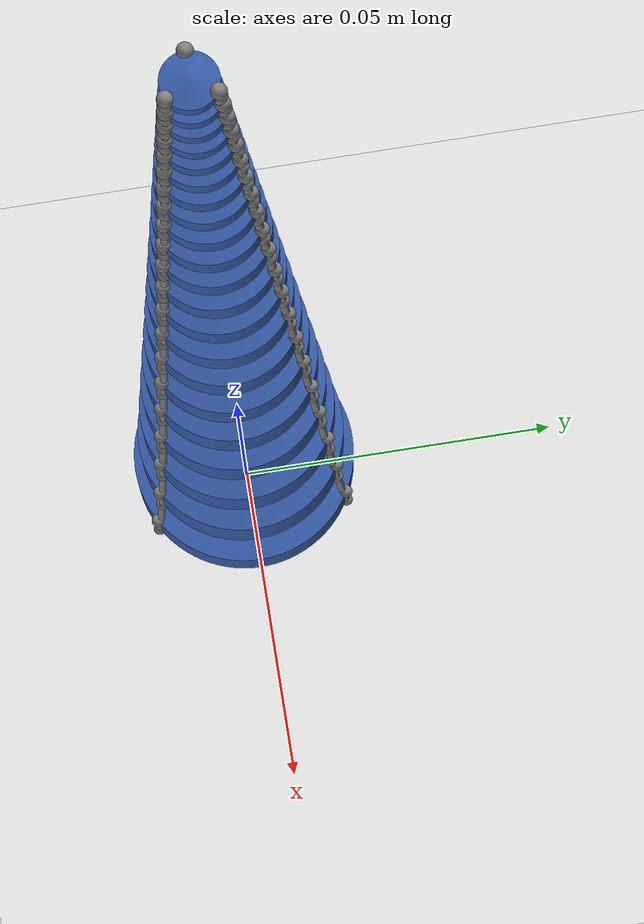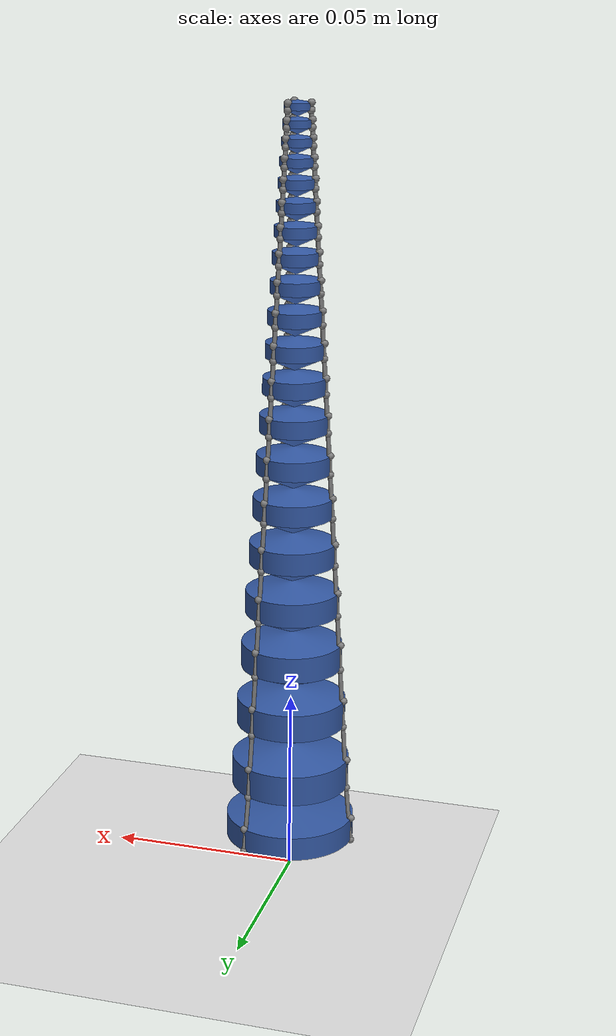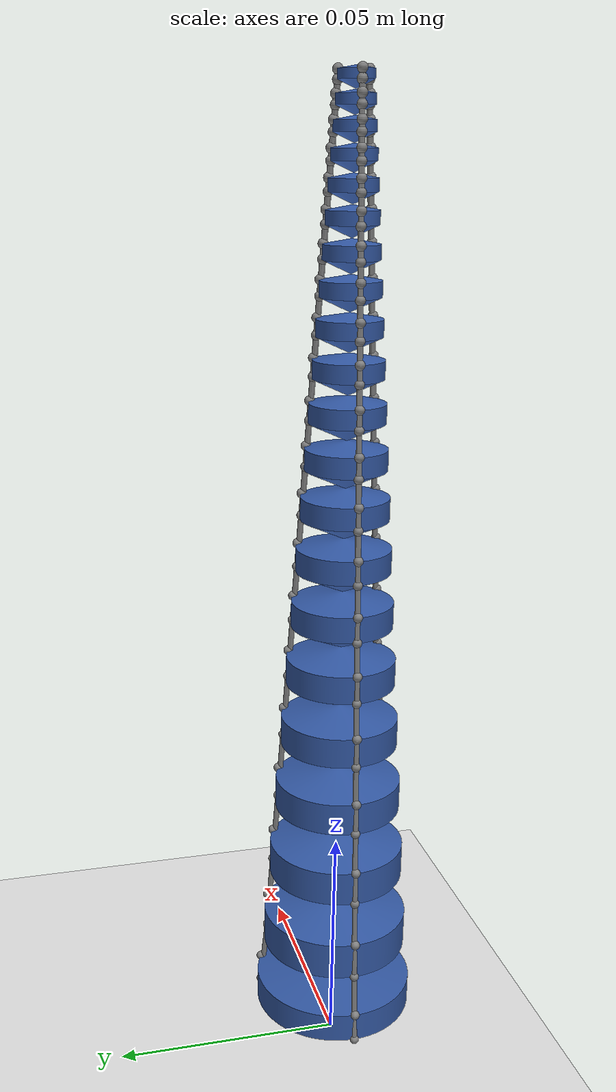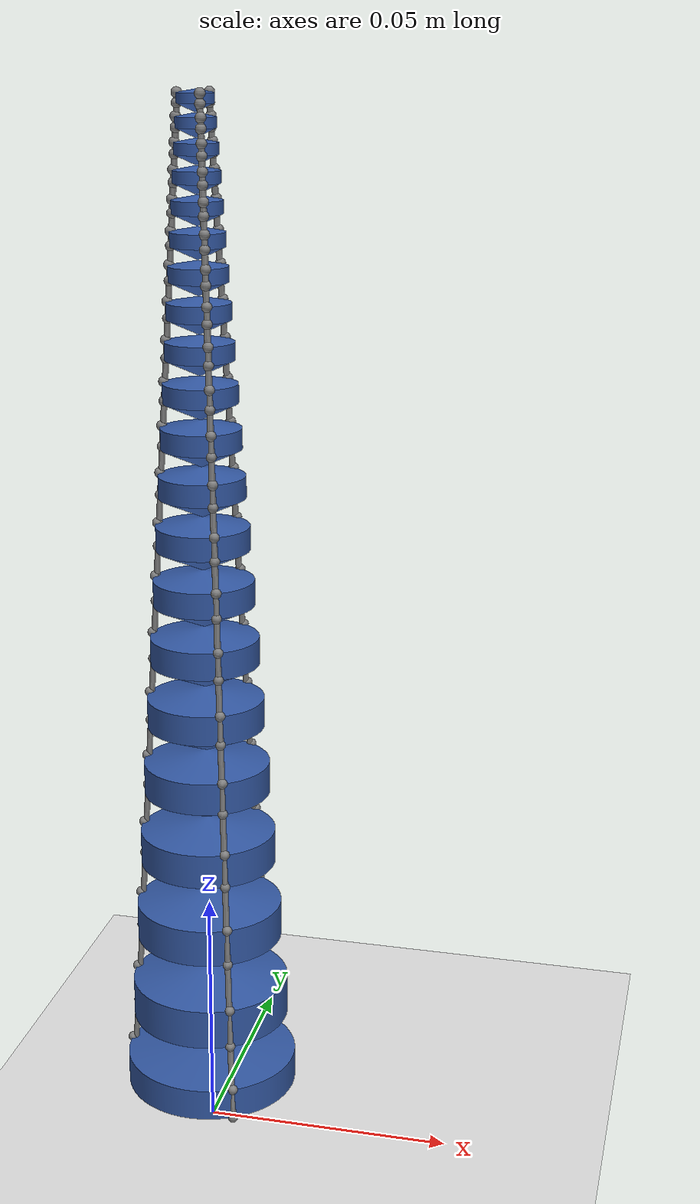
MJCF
<mujoco model="SpiRob">
  <compiler angle="radian" inertiafromgeom="true" autolimits="true"/>
  <option timestep="0.002" gravity="0.0 0.0 -9.81" integrator="implicit"/>
  <visual>
    <quality shadowsize="4096"/>
    <map znear="0.01" zfar="20"/>
    <scale connect="0"/>
  </visual>

  <!-- ===== DEFAULTS: edit these to tune global behavior ===== -->
  <default>
    <geom density="1200.0" margin="0.001"
          rgba="0.2 0.35 0.65 1.0"
          friction="0.6 0.01 0.001"/>
    <site size="0.001"/>
    <joint damping="0.01" stiffness="0.05" limited="false"/>
    <motor ctrllimited="true" ctrlrange="-5.0 0.0" gear="1.0"/>
  </default>

  <asset>
    <mesh name="link_001" file="meshes\link_001.stl"/>

    <mesh name="link_002" file="meshes\link_002.stl"/>

    <mesh name="link_003" file="meshes\link_003.stl"/>

    <mesh name="link_004" file="meshes\link_004.stl"/>

    <mesh name="link_005" file="meshes\link_005.stl"/>

    <mesh name="link_006" file="meshes\link_006.stl"/>

    <mesh name="link_007" file="meshes\link_007.stl"/>

    <mesh name="link_008" file="meshes\link_008.stl"/>

    <mesh name="link_009" file="meshes\link_009.stl"/>

    <mesh name="link_010" file="meshes\link_010.stl"/>

    <mesh name="link_011" file="meshes\link_011.stl"/>

    <mesh name="link_012" file="meshes\link_012.stl"/>

    <mesh name="link_013" file="meshes\link_013.stl"/>

    <mesh name="link_014" file="meshes\link_014.stl"/>

    <mesh name="link_015" file="meshes\link_015.stl"/>

    <mesh name="link_016" file="meshes\link_016.stl"/>

    <mesh name="link_017" file="meshes\link_017.stl"/>

    <mesh name="link_018" file="meshes\link_018.stl"/>

    <mesh name="link_019" file="meshes\link_019.stl"/>

    <mesh name="link_020" file="meshes\link_020.stl"/>

    <mesh name="link_021" file="meshes\link_021.stl"/>
  </asset>

  <worldbody>
    <light name="light1" diffuse="1 1 1" active="true" pos="0 -0.5 0.01" dir="0 1 0"/>
    <light name="light2" diffuse="1 1 1" active="true" pos="-0.01 -0.5 0.5" dir="0 0 -1"/>
    <light name="light3" diffuse="1 1 1" active="true" pos="0 -0.1 1.5" dir="0 0 -1"/>
    <geom type="plane" size="2 2 0.05" rgba="0.9 0.9 0.9 1"/>
    <body name="link_001" pos="9.201534098006623e-17 0.0 0.003204676108156501" quat="0.9999999999999989 0.0 -2.0265051502934331e-16 -0.0">
      <joint name="j_001" type="ball"/>
      <geom name="gmesh_001" type="mesh" mesh="link_001" group="1"/>
      <site name="c0_001_s1" pos="-0.017466993738933023 0.0 0.0064417392977900514"/> <site name="c0_001_s2" pos="-0.01746699373893302 0.0 0.012934492045517589"/> <site name="c1_001_s1" pos="0.008733496869466374 -0.015126860305659656 0.006441739297790041"/> <site name="c1_001_s2" pos="0.008733496869466376 -0.015126860305659656 0.012934492045517578"/> <site name="c2_001_s1" pos="0.008733496869466385 0.015126860305659651 0.006441739297790041"/> <site name="c2_001_s2" pos="0.008733496869466386 0.015126860305659651 0.012934492045517578"/>

    <body name="link_002" pos="0.0 0.0 0.014679218087922385" quat="0.9999999999999989 0.0 2.267115779592851e-16 0.0">
      <joint name="j_002" type="ball"/>
      <geom name="gmesh_002" type="mesh" mesh="link_002" group="1"/>
      <site name="c0_002_s1" pos="-0.015931188921888266 0.0 0.007371374279879938"/> <site name="c0_002_s2" pos="-0.01593118892188827 0.0 0.015561736087811445"/> <site name="c1_002_s1" pos="0.007965594460944 -0.013796814318844388 0.007371374279879939"/> <site name="c1_002_s2" pos="0.007965594460944001 -0.01379681431884439 0.015561736087811445"/> <site name="c2_002_s1" pos="0.00796559446094401 0.013796814318844384 0.007371374279879939"/> <site name="c2_002_s2" pos="0.007965594460944012 0.013796814318844386 0.015561736087811445"/>

    <body name="link_003" pos="0.0 0.0 0.018517277935725662" quat="0.9999999999999989 0.0 2.4888340552575934e-17 0.0">
      <joint name="j_003" type="ball"/>
      <geom name="gmesh_003" type="mesh" mesh="link_003" group="1"/>
      <site name="c0_003_s1" pos="-0.0147051779522689 0.0 0.006804097991047168"/> <site name="c0_003_s2" pos="-0.014705177952268904 0.0 0.01436415697155574"/> <site name="c1_003_s1" pos="0.007352588976134316 -0.012735057673835625 0.006804097991047171"/> <site name="c1_003_s2" pos="0.007352588976134316 -0.012735057673835627 0.014364156971555742"/> <site name="c2_003_s1" pos="0.007352588976134326 0.012735057673835622 0.006804097991047171"/> <site name="c2_003_s2" pos="0.007352588976134326 0.012735057673835624 0.014364156971555742"/>

    <body name="link_004" pos="0.0 0.0 0.017092250212559446" quat="0.9999999999999989 0.0 3.0213085282659427e-17 0.0">
      <joint name="j_004" type="ball"/>
      <geom name="gmesh_004" type="mesh" mesh="link_004" group="1"/>
      <site name="c0_004_s1" pos="-0.013573516682787863 0.0 0.006280477386440079"/> <site name="c0_004_s2" pos="-0.013573516682787858 0.0 0.013258739535179307"/> <site name="c1_004_s1" pos="0.006786758341393795 -0.011755010265986096 0.006280477386440082"/> <site name="c1_004_s2" pos="0.006786758341393791 -0.011755010265986092 0.013258739535179311"/> <site name="c2_004_s1" pos="0.006786758341393803 0.011755010265986094 0.006280477386440082"/> <site name="c2_004_s2" pos="0.0067867583413938 0.011755010265986089 0.013258739535179311"/>

    <body name="link_005" pos="0.0 0.0 0.015776887852673893" quat="0.9999999999999989 0.0 -1.5314412010148087e-16 0.0">
      <joint name="j_005" type="ball"/>
      <geom name="gmesh_005" type="mesh" mesh="link_005" group="1"/>
      <site name="c0_005_s1" pos="-0.012528944276359023 0.0 0.005797152870738483"/> <site name="c0_005_s2" pos="-0.012528944276359026 0.0 0.0122383913243109"/> <site name="c1_005_s1" pos="0.0062644721381793726 -0.010850384025926476 0.00579715287073848"/> <site name="c1_005_s2" pos="0.006264472138179376 -0.010850384025926479 0.012238391324310897"/> <site name="c2_005_s1" pos="0.00626447213817938 0.010850384025926472 0.00579715287073848"/> <site name="c2_005_s2" pos="0.006264472138179384 0.010850384025926477 0.012238391324310897"/>

    <body name="link_006" pos="0.0 0.0 0.01456275137681698" quat="0.9999999999999989 0.0 -2.9948116073343956e-15 0.0">
      <joint name="j_006" type="ball"/>
      <geom name="gmesh_006" type="mesh" mesh="link_006" group="1"/>
      <site name="c0_006_s1" pos="-0.011564758665612702 0.0 0.005351023391831857"/> <site name="c0_006_s2" pos="-0.0115647586656127 0.0 0.011296565696125404"/> <site name="c1_006_s1" pos="0.005782379332806264 -0.010015374793056779 0.00535102339183175"/> <site name="c1_006_s2" pos="0.005782379332806318 -0.010015374793056808 0.011296565696125298"/> <site name="c2_006_s1" pos="0.005782379332806272 0.010015374793056775 0.00535102339183175"/> <site name="c2_006_s2" pos="0.005782379332806326 0.010015374793056806 0.011296565696125298"/>

    <body name="link_007" pos="0.0 0.0 0.013442050779808395" quat="0.9999999999999989 0.0 2.9773580553475247e-15 0.0">
      <joint name="j_007" type="ball"/>
      <geom name="gmesh_007" type="mesh" mesh="link_007" group="1"/>
      <site name="c0_007_s1" pos="-0.010674773551848754 0.0 0.0049392265441990674"/> <site name="c0_007_s2" pos="-0.010674773551848756 0.0 0.01042721981551459"/> <site name="c1_007_s1" pos="0.005337386775924367 -0.00924462507554726 0.004939226544199065"/> <site name="c1_007_s2" pos="0.0053373867759243685 -0.009244625075547262 0.010427219815514586"/> <site name="c2_007_s1" pos="0.005337386775924374 0.009244625075547257 0.004939226544199065"/> <site name="c2_007_s2" pos="0.0053373867759243755 0.009244625075547259 0.010427219815514586"/>

    <body name="link_008" pos="0.0 0.0 0.012407595549189424" quat="0.9999999999999989 0.0 7.651755397152339e-17 0.0">
      <joint name="j_008" type="ball"/>
      <geom name="gmesh_008" type="mesh" mesh="link_008" group="1"/>
      <site name="c0_008_s1" pos="-0.00985327871320629 0.0 0.004559120203466202"/> <site name="c0_008_s2" pos="-0.009853278713206287 0.0 0.00962477588373191"/> <site name="c1_008_s1" pos="0.004926639356603136 -0.008533189676205089 0.004559120203466202"/> <site name="c1_008_s2" pos="0.004926639356603135 -0.008533189676205087 0.00962477588373191"/> <site name="c2_008_s1" pos="0.004926639356603143 0.008533189676205087 0.004559120203466202"/> <site name="c2_008_s2" pos="0.004926639356603142 0.008533189676205085 0.00962477588373191"/>

    <body name="link_009" pos="0.0 0.0 0.011452748530270077" quat="0.9999999999999989 0.0 4.804851811769712e-17 0.0">
      <joint name="j_009" type="ball"/>
      <geom name="gmesh_009" type="mesh" mesh="link_009" group="1"/>
      <site name="c0_009_s1" pos="-0.009095003367383822 0.0 0.0042082655743064514"/> <site name="c0_009_s2" pos="-0.00909500336738382 0.0 0.008884085350750331"/> <site name="c1_009_s1" pos="0.004547501683691904 -0.0078765039636594 0.004208265574306452"/> <site name="c1_009_s2" pos="0.004547501683691902 -0.0078765039636594 0.008884085350750331"/> <site name="c2_009_s1" pos="0.00454750168369191 0.007876503963659399 0.004208265574306452"/> <site name="c2_009_s2" pos="0.0045475016836919084 0.007876503963659397 0.008884085350750331"/>

    <body name="link_010" pos="0.0 0.0 0.01057138334156707" quat="0.9999999999999989 0.0 -7.302398845032509e-17 0.0">
      <joint name="j_010" type="ball"/>
      <geom name="gmesh_010" type="mesh" mesh="link_010" group="1"/>
      <site name="c0_010_s1" pos="-0.008395082353841798 0.0 0.003884411542917577"/> <site name="c0_010_s2" pos="-0.0083950823538418 0.0 0.008200395881718309"/> <site name="c1_010_s1" pos="0.00419754117692089 -0.007270354585289455 0.003884411542917576"/> <site name="c1_010_s2" pos="0.004197541176920892 -0.007270354585289456 0.008200395881718309"/> <site name="c2_010_s1" pos="0.004197541176920895 0.007270354585289453 0.003884411542917576"/> <site name="c2_010_s2" pos="0.004197541176920897 0.007270354585289454 0.008200395881718309"/>

    <body name="link_011" pos="0.0 0.0 0.009757845067408122" quat="0.9999999999999989 0.0 -8.819192595672664e-17 0.0">
      <joint name="j_011" type="ball"/>
      <geom name="gmesh_011" type="mesh" mesh="link_011" group="1"/>
      <site name="c0_011_s1" pos="-0.007749024918509591 0.0 0.003585480233679913"/> <site name="c0_011_s2" pos="-0.007749024918509589 0.0 0.007569320865565917"/> <site name="c1_011_s1" pos="0.0038745124592547892 -0.0067108524339879435 0.00358548023367991"/> <site name="c1_011_s2" pos="0.0038745124592547897 -0.006710852433987943 0.007569320865565914"/> <site name="c2_011_s1" pos="0.0038745124592547944 0.006710852433987942 0.00358548023367991"/> <site name="c2_011_s2" pos="0.003874512459254795 0.006710852433987941 0.007569320865565914"/>

    <body name="link_012" pos="0.0 0.0 0.009006913975501296" quat="0.9999999999999989 0.0 1.2967630674290876e-16 0.0">
      <joint name="j_012" type="ball"/>
      <geom name="gmesh_012" type="mesh" mesh="link_012" group="1"/>
      <site name="c0_012_s1" pos="-0.007152685900717032 0.0 0.0033095536773256606"/> <site name="c0_012_s2" pos="-0.007152685900717034 0.0 0.0069868112701267915"/> <site name="c1_012_s1" pos="0.003576342950358512 -0.006194407695311728 0.0033095536773256606"/> <site name="c1_012_s2" pos="0.003576342950358513 -0.006194407695311729 0.0069868112701267915"/> <site name="c2_012_s1" pos="0.003576342950358517 0.0061944076953117265 0.0033095536773256606"/> <site name="c2_012_s2" pos="0.0035763429503585177 0.006194407695311727 0.0069868112701267915"/>

    <body name="link_013" pos="0.0 0.0 0.008313772026678407" quat="0.9999999999999989 0.0 1.3954097849488682e-17 0.0">
      <joint name="j_013" type="ball"/>
      <geom name="gmesh_013" type="mesh" mesh="link_013" group="1"/>
      <site name="c0_013_s1" pos="-0.006602239137483155 0.0 0.003054861505081663"/> <site name="c0_013_s2" pos="-0.006602239137483156 0.0 0.006449129663196246"/> <site name="c1_013_s1" pos="0.003301119568741574 -0.005717706814920272 0.003054861505081663"/> <site name="c1_013_s2" pos="0.0033011195687415746 -0.005717706814920273 0.006449129663196246"/> <site name="c2_013_s1" pos="0.0033011195687415785 0.0057177068149202705 0.003054861505081663"/> <site name="c2_013_s2" pos="0.003301119568741579 0.005717706814920271 0.006449129663196246"/>

    <body name="link_014" pos="0.0 0.0 0.007673971961937587" quat="0.9999999999999989 0.0 1.7667064599478886e-17 0.0">
      <joint name="j_014" type="ball"/>
      <geom name="gmesh_014" type="mesh" mesh="link_014" group="1"/>
      <site name="c0_014_s1" pos="-0.006094152914521888 0.0 0.002819769589829074"/> <site name="c0_014_s2" pos="-0.006094152914521888 0.0 0.005952826232840658"/> <site name="c1_014_s1" pos="0.00304707645726094 -0.005277691238522931 0.0028197695898290742"/> <site name="c1_014_s2" pos="0.0030470764572609397 -0.005277691238522931 0.005952826232840658"/> <site name="c2_014_s1" pos="0.003047076457260944 0.005277691238522929 0.0028197695898290742"/> <site name="c2_014_s2" pos="0.0030470764572609436 0.005277691238522929 0.005952826232840658"/>

    <body name="link_015" pos="0.0 0.0 0.007083408768442323" quat="0.9999999999999989 0.0 -7.038556109038006e-19 0.0">
      <joint name="j_015" type="ball"/>
      <geom name="gmesh_015" type="mesh" mesh="link_015" group="1"/>
      <site name="c0_015_s1" pos="-0.005625167306456169 0.0 0.0026027695614018183"/> <site name="c0_015_s2" pos="-0.005625167306456168 0.0 0.005494716653104692"/> <site name="c1_015_s1" pos="0.0028125836532280797 -0.004871537787928725 0.0026027695614018187"/> <site name="c1_015_s2" pos="0.002812583653228079 -0.0048715377879287244 0.005494716653104692"/> <site name="c2_015_s1" pos="0.0028125836532280836 0.004871537787928724 0.0026027695614018187"/> <site name="c2_015_s2" pos="0.0028125836532280827 0.004871537787928723 0.005494716653104692"/>

    <body name="link_016" pos="0.0 0.0 0.006538293341402462" quat="0.9999999999999989 0.0 -3.040727752437489e-16 0.0">
      <joint name="j_016" type="ball"/>
      <geom name="gmesh_016" type="mesh" mesh="link_016" group="1"/>
      <site name="c0_016_s1" pos="-0.005192273260853322 0.0 0.002402469128752613"/> <site name="c0_016_s2" pos="-0.005192273260853323 0.0 0.005071861653098922"/> <site name="c1_016_s1" pos="0.002596136630426658 -0.004496640547289642 0.002402469128752609"/> <site name="c1_016_s2" pos="0.0025961366304266603 -0.004496640547289644 0.005071861653098917"/> <site name="c2_016_s1" pos="0.0025961366304266616 0.004496640547289641 0.002402469128752609"/> <site name="c2_016_s2" pos="0.0025961366304266638 0.004496640547289642 0.005071861653098917"/>

    <body name="link_017" pos="0.0 0.0 0.0060351281728483475" quat="0.9999999999999989 0.0 1.4294430778093038e-16 0.0">
      <joint name="j_017" type="ball"/>
      <geom name="gmesh_017" type="mesh" mesh="link_017" group="1"/>
      <site name="c0_017_s1" pos="-0.004792693291883063 0.0 0.0022175831468925224"/> <site name="c0_017_s2" pos="-0.0047926932918830635 0.0 0.0046815481583824545"/> <site name="c1_017_s1" pos="0.002396346645941532 -0.004150594143318001 0.0022175831468925207"/> <site name="c1_017_s2" pos="0.0023963466459415335 -0.004150594143318002 0.004681548158382453"/> <site name="c2_017_s1" pos="0.0023963466459415352 0.004150594143318 0.0022175831468925207"/> <site name="c2_017_s2" pos="0.0023963466459415365 0.004150594143318001 0.004681548158382453"/>

    <body name="link_018" pos="-1.925929944387236e-34 0.0 0.0055706849113159596" quat="0.9999999999999989 0.0 4.111740376231239e-17 0.0">
      <joint name="j_018" type="ball"/>
      <geom name="gmesh_018" type="mesh" mesh="link_018" group="1"/>
      <site name="c0_018_s1" pos="-0.00442386365972694 0.0 0.0020469253712887"/> <site name="c0_018_s2" pos="-0.004423863659726939 0.0 0.004321271883641121"/> <site name="c1_018_s1" pos="0.0022119318298634725 -0.0038311783122023293 0.002046925371288699"/> <site name="c1_018_s2" pos="0.002211931829863473 -0.0038311783122023293 0.00432127188364112"/> <site name="c2_018_s1" pos="0.0022119318298634756 0.0038311783122023284 0.002046925371288699"/> <site name="c2_018_s2" pos="0.002211931829863476 0.0038311783122023284 0.00432127188364112"/>

    <body name="link_019" pos="0.0 0.0 0.005141983648462745" quat="0.9999999999999989 0.0 1.157111553399235e-16 0.0">
      <joint name="j_019" type="ball"/>
      <geom name="gmesh_019" type="mesh" mesh="link_019" group="1"/>
      <site name="c0_019_s1" pos="-0.004083417921400788 0.0 0.0018894008468168242"/> <site name="c0_019_s2" pos="-0.004083417921400789 0.0 0.00398872126497557"/> <site name="c1_019_s1" pos="0.0020417089607003974 -0.003536343654201733 0.0018894008468168246"/> <site name="c1_019_s2" pos="0.0020417089607003974 -0.003536343654201734 0.00398872126497557"/> <site name="c2_019_s1" pos="0.0020417089607004 0.0035363436542017322 0.0018894008468168246"/> <site name="c2_019_s2" pos="0.0020417089607004 0.0035363436542017327 0.00398872126497557"/>

    <body name="link_020" pos="0.0 0.0 0.004746273799717121" quat="0.9999999999999989 0.0 -5.293319430239881e-17 0.0">
      <joint name="j_020" type="ball"/>
      <geom name="gmesh_020" type="mesh" mesh="link_020" group="1"/>
      <site name="c0_020_s1" pos="-0.0037691717474508113 0.0 0.0017439988824334287"/> <site name="c0_020_s2" pos="-0.003769171747450811 0.0 0.0036817626287060923"/> <site name="c1_020_s1" pos="0.0018845858737254087 -0.0032641984845189894 0.0017439988824334285"/> <site name="c1_020_s2" pos="0.0018845858737254087 -0.003264198484518989 0.0036817626287060923"/> <site name="c2_020_s1" pos="0.0018845858737254113 0.0032641984845189886 0.0017439988824334285"/> <site name="c2_020_s2" pos="0.0018845858737254113 0.003264198484518988 0.0036817626287060923"/>

    <body name="link_021" pos="0.0 0.0 0.004381016456288356" quat="0.9999999999999989 0.0 3.8617927082517215e-16 0.0">
      <joint name="j_021" type="ball"/>
      <geom name="gmesh_021" type="mesh" mesh="link_021" group="1"/>
      <site name="c0_021_s1" pos="-0.0034791089071059137 0.0 0.0016097865664945173"/> <site name="c0_021_s2" pos="-0.0034791089071059137 0.0 0.0033984265015369304"/> <site name="c1_021_s1" pos="0.0017395544535529586 -0.0030129966960864376 0.0016097865664945212"/> <site name="c1_021_s2" pos="0.0017395544535529566 -0.0030129966960864363 0.0033984265015369343"/> <site name="c2_021_s1" pos="0.001739554453552961 0.0030129966960864367 0.0016097865664945212"/> <site name="c2_021_s2" pos="0.001739554453552959 0.003012996696086436 0.0033984265015369343"/>
    </body>
    </body>
    </body>
    </body>
    </body>
    </body>
    </body>
    </body>
    </body>
    </body>
    </body>
    </body>
    </body>
    </body>
    </body>
    </body>
    </body>
    </body>
    </body>
    </body>
    </body>
  </worldbody>
  <tendon>
    <spatial name="cable_0" width="0.0006">
      <site site="c0_021_s2"/>

      <site site="c0_021_s1"/>

      <site site="c0_020_s1"/>

      <site site="c0_019_s1"/>

      <site site="c0_018_s1"/>

      <site site="c0_017_s1"/>

      <site site="c0_016_s1"/>

      <site site="c0_015_s1"/>

      <site site="c0_014_s1"/>

      <site site="c0_013_s1"/>

      <site site="c0_012_s1"/>

      <site site="c0_011_s1"/>

      <site site="c0_010_s1"/>

      <site site="c0_009_s1"/>

      <site site="c0_008_s1"/>

      <site site="c0_007_s1"/>

      <site site="c0_006_s1"/>

      <site site="c0_005_s1"/>

      <site site="c0_004_s1"/>

      <site site="c0_003_s1"/>

      <site site="c0_002_s1"/>

      <site site="c0_001_s1"/>
    </spatial>

    <spatial name="cable_1" width="0.0006">
      <site site="c1_021_s2"/>

      <site site="c1_021_s1"/>

      <site site="c1_020_s1"/>

      <site site="c1_019_s1"/>

      <site site="c1_018_s1"/>

      <site site="c1_017_s1"/>

      <site site="c1_016_s1"/>

      <site site="c1_015_s1"/>

      <site site="c1_014_s1"/>

      <site site="c1_013_s1"/>

      <site site="c1_012_s1"/>

      <site site="c1_011_s1"/>

      <site site="c1_010_s1"/>

      <site site="c1_009_s1"/>

      <site site="c1_008_s1"/>

      <site site="c1_007_s1"/>

      <site site="c1_006_s1"/>

      <site site="c1_005_s1"/>

      <site site="c1_004_s1"/>

      <site site="c1_003_s1"/>

      <site site="c1_002_s1"/>

      <site site="c1_001_s1"/>
    </spatial>

    <spatial name="cable_2" width="0.0006">
      <site site="c2_021_s2"/>

      <site site="c2_021_s1"/>

      <site site="c2_020_s1"/>

      <site site="c2_019_s1"/>

      <site site="c2_018_s1"/>

      <site site="c2_017_s1"/>

      <site site="c2_016_s1"/>

      <site site="c2_015_s1"/>

      <site site="c2_014_s1"/>

      <site site="c2_013_s1"/>

      <site site="c2_012_s1"/>

      <site site="c2_011_s1"/>

      <site site="c2_010_s1"/>

      <site site="c2_009_s1"/>

      <site site="c2_008_s1"/>

      <site site="c2_007_s1"/>

      <site site="c2_006_s1"/>

      <site site="c2_005_s1"/>

      <site site="c2_004_s1"/>

      <site site="c2_003_s1"/>

      <site site="c2_002_s1"/>

      <site site="c2_001_s1"/>
    </spatial>
  </tendon>
  <actuator>
    <motor name="motor_c0" tendon="cable_0"/>

    <motor name="motor_c1" tendon="cable_1"/>

    <motor name="motor_c2" tendon="cable_2"/>
  </actuator>
</mujoco>
